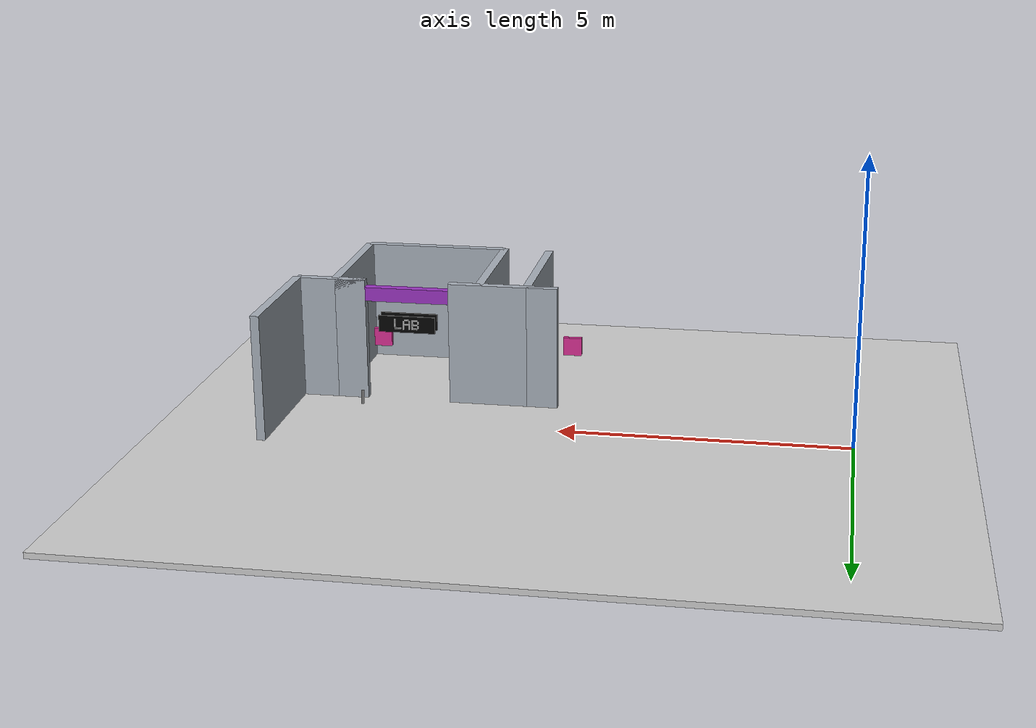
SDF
<sdf version="1.9">
 <world name="default">
  <model name="ground_plane">
   <static>true</static>
   <pose>4.95 0 -0.05 0 0 0</pose>
   <link name="body">
    <collision name="collision"><geometry><box><size>13.9 12 0.1</size></box></geometry></collision>
    <visual name="visual">
     <geometry><box><size>13.9 12 0.1</size></box></geometry>
     <material><ambient>0.8 0.8 0.8 1</ambient><diffuse>0.8 0.8 0.8 1</diffuse></material>
    </visual>
   </link>
  </model>
  <model name="end_wall">
   <static>true</static>
   <pose>9.9 0 1.1 0 0 0</pose>
   <link name="body">
    <collision name="collision"><geometry><box><size>0.15 2.4 2.2</size></box></geometry></collision>
    <visual name="visual">
     <geometry><box><size>0.15 2.4 2.2</size></box></geometry>
     <material><ambient>0.65 0.68 0.72 1</ambient><diffuse>0.65 0.68 0.72 1</diffuse></material>
    </visual>
   </link>
  </model>
  <model name="room_-1_1_1">
   <static>true</static>
   <pose>5.75 -2.4 1.1 0 0 0</pose>
   <link name="body">
    <collision name="collision"><geometry><box><size>0.15 2.4 2.2</size></box></geometry></collision>
    <visual name="visual">
     <geometry><box><size>0.15 2.4 2.2</size></box></geometry>
     <material><ambient>0.65 0.68 0.72 1</ambient><diffuse>0.65 0.68 0.72 1</diffuse></material>
    </visual>
   </link>
  </model>
  <model name="jamb_-1_1_1">
   <static>true</static>
   <pose>5.475 -1.2 1.1 0 0 0</pose>
   <link name="body">
    <collision name="collision"><geometry><box><size>0.55 0.15 2.2</size></box></geometry></collision>
    <visual name="visual">
     <geometry><box><size>0.55 0.15 2.2</size></box></geometry>
     <material><ambient>0.65 0.68 0.72 1</ambient><diffuse>0.65 0.68 0.72 1</diffuse></material>
    </visual>
   </link>
  </model>
  <model name="hall_-1_2">
   <static>true</static>
   <pose>6.175000000000001 -1.2 1.1 0 0 0</pose>
   <link name="body">
    <collision name="collision">
     <geometry><box><size>1.9500000000000002 0.15 2.2</size></box></geometry>
    </collision>
    <visual name="visual">
     <geometry><box><size>1.9500000000000002 0.15 2.2</size></box></geometry>
     <material><ambient>0.65 0.68 0.72 1</ambient><diffuse>0.65 0.68 0.72 1</diffuse></material>
    </visual>
   </link>
  </model>
  <model name="room_-1_2_-1">
   <static>true</static>
   <pose>6.6000000000000005 -2.4 1.1 0 0 0</pose>
   <link name="body">
    <collision name="collision"><geometry><box><size>0.15 2.4 2.2</size></box></geometry></collision>
    <visual name="visual">
     <geometry><box><size>0.15 2.4 2.2</size></box></geometry>
     <material><ambient>0.65 0.68 0.72 1</ambient><diffuse>0.65 0.68 0.72 1</diffuse></material>
    </visual>
   </link>
  </model>
  <model name="room_-1_2_1">
   <static>true</static>
   <pose>9.200000000000001 -2.4 1.1 0 0 0</pose>
   <link name="body">
    <collision name="collision"><geometry><box><size>0.15 2.4 2.2</size></box></geometry></collision>
    <visual name="visual">
     <geometry><box><size>0.15 2.4 2.2</size></box></geometry>
     <material><ambient>0.65 0.68 0.72 1</ambient><diffuse>0.65 0.68 0.72 1</diffuse></material>
    </visual>
   </link>
  </model>
  <model name="room_end_-1_2">
   <static>true</static>
   <pose>7.9 -3.5999999999999996 1.1 0 0 0</pose>
   <link name="body">
    <collision name="collision"><geometry><box><size>2.6 0.15 2.2</size></box></geometry></collision>
    <visual name="visual">
     <geometry><box><size>2.6 0.15 2.2</size></box></geometry>
     <material><ambient>0.65 0.68 0.72 1</ambient><diffuse>0.65 0.68 0.72 1</diffuse></material>
    </visual>
   </link>
  </model>
  <model name="jamb_-1_2_-1">
   <static>true</static>
   <pose>6.875 -1.2 1.1 0 0 0</pose>
   <link name="body">
    <collision name="collision"><geometry><box><size>0.55 0.15 2.2</size></box></geometry></collision>
    <visual name="visual">
     <geometry><box><size>0.55 0.15 2.2</size></box></geometry>
     <material><ambient>0.65 0.68 0.72 1</ambient><diffuse>0.65 0.68 0.72 1</diffuse></material>
    </visual>
   </link>
  </model>
  <model name="jamb_-1_2_1">
   <static>true</static>
   <pose>8.925 -1.2 1.1 0 0 0</pose>
   <link name="body">
    <collision name="collision"><geometry><box><size>0.55 0.15 2.2</size></box></geometry></collision>
    <visual name="visual">
     <geometry><box><size>0.55 0.15 2.2</size></box></geometry>
     <material><ambient>0.65 0.68 0.72 1</ambient><diffuse>0.65 0.68 0.72 1</diffuse></material>
    </visual>
   </link>
  </model>
  <model name="hall_end_-1">
   <static>true</static>
   <pose>9.275 -1.2 1.1 0 0 0</pose>
   <link name="body">
    <collision name="collision"><geometry><box><size>1.25 0.15 2.2</size></box></geometry></collision>
    <visual name="visual">
     <geometry><box><size>1.25 0.15 2.2</size></box></geometry>
     <material><ambient>0.65 0.68 0.72 1</ambient><diffuse>0.65 0.68 0.72 1</diffuse></material>
    </visual>
   </link>
  </model>
  <model name="r3geo_base_r007_right_1_entrance_sign">
   <static>true</static>
   <pose>4.98 -1.5 1.05 0 0 0</pose>
   <link name="body">
    <visual name="visual">
     <geometry><box><size>0.32 0.08 0.32</size></box></geometry>
     <material><ambient>0.84 0.18 0.57 1</ambient><diffuse>0.84 0.18 0.57 1</diffuse></material>
    </visual>
   </link>
  </model>
  <model name="r3geo_base_r007_right_2_lintel">
   <static>true</static>
   <pose>7.9 -1.2 1.95 0 0 0</pose>
   <link name="body">
    <collision name="collision"><geometry><box><size>1.5 0.16 0.25</size></box></geometry></collision>
    <visual name="visual">
     <geometry><box><size>1.5 0.16 0.25</size></box></geometry>
     <material><ambient>0.6 0.2 0.75 1</ambient><diffuse>0.6 0.2 0.75 1</diffuse></material>
    </visual>
   </link>
  </model>
  <model name="r3geo_base_r007_right_2_entrance_sign">
   <static>true</static>
   <pose>8.43 -1.5 1.05 0 0 0</pose>
   <link name="body">
    <visual name="visual">
     <geometry><box><size>0.32 0.08 0.32</size></box></geometry>
     <material><ambient>0.84 0.18 0.57 1</ambient><diffuse>0.84 0.18 0.57 1</diffuse></material>
    </visual>
   </link>
  </model>
  <model name="readable_r3geo_base_r007_right_2_entrance_corridor">
   <static>true</static>
   <pose>7.9 -1.1 1.43 0 0 3.14159265359</pose>
   <link name="lettering">
    <visual name="backboard">
     <geometry><box><size>1.02 0.018 0.3</size></box></geometry>
     <material>
      <ambient>.015 .015 .015 1</ambient>
      <diffuse>.015 .015 .015 1</diffuse>
      <emissive>.015 .015 .015 1</emissive>
     </material>
     <cast_shadows>false</cast_shadows>
    </visual>
    <visual name="letter_0_0_0">
     <pose>-0.208 -0.014 0.078 0 0 0</pose>
     <geometry><box><size>0.024439999999999996 0.008 0.024439999999999996</size></box></geometry>
     <material>
      <ambient>.96 .96 .96 1</ambient>
      <diffuse>.96 .96 .96 1</diffuse>
      <emissive>.96 .96 .96 1</emissive>
     </material>
     <cast_shadows>false</cast_shadows>
    </visual>
    <visual name="letter_0_1_0">
     <pose>-0.208 -0.014 0.052 0 0 0</pose>
     <geometry><box><size>0.024439999999999996 0.008 0.024439999999999996</size></box></geometry>
     <material>
      <ambient>.96 .96 .96 1</ambient>
      <diffuse>.96 .96 .96 1</diffuse>
      <emissive>.96 .96 .96 1</emissive>
     </material>
     <cast_shadows>false</cast_shadows>
    </visual>
    <visual name="letter_0_2_0">
     <pose>-0.208 -0.014 0.026 0 0 0</pose>
     <geometry><box><size>0.024439999999999996 0.008 0.024439999999999996</size></box></geometry>
     <material>
      <ambient>.96 .96 .96 1</ambient>
      <diffuse>.96 .96 .96 1</diffuse>
      <emissive>.96 .96 .96 1</emissive>
     </material>
     <cast_shadows>false</cast_shadows>
    </visual>
    <visual name="letter_0_3_0">
     <pose>-0.208 -0.014 0 0 0 0</pose>
     <geometry><box><size>0.024439999999999996 0.008 0.024439999999999996</size></box></geometry>
     <material>
      <ambient>.96 .96 .96 1</ambient>
      <diffuse>.96 .96 .96 1</diffuse>
      <emissive>.96 .96 .96 1</emissive>
     </material>
     <cast_shadows>false</cast_shadows>
    </visual>
    <visual name="letter_0_4_0">
     <pose>-0.208 -0.014 -0.026 0 0 0</pose>
     <geometry><box><size>0.024439999999999996 0.008 0.024439999999999996</size></box></geometry>
     <material>
      <ambient>.96 .96 .96 1</ambient>
      <diffuse>.96 .96 .96 1</diffuse>
      <emissive>.96 .96 .96 1</emissive>
     </material>
     <cast_shadows>false</cast_shadows>
    </visual>
    <visual name="letter_0_5_0">
     <pose>-0.208 -0.014 -0.052 0 0 0</pose>
     <geometry><box><size>0.024439999999999996 0.008 0.024439999999999996</size></box></geometry>
     <material>
      <ambient>.96 .96 .96 1</ambient>
      <diffuse>.96 .96 .96 1</diffuse>
      <emissive>.96 .96 .96 1</emissive>
     </material>
     <cast_shadows>false</cast_shadows>
    </visual>
    <visual name="letter_0_6_0">
     <pose>-0.208 -0.014 -0.078 0 0 0</pose>
     <geometry><box><size>0.024439999999999996 0.008 0.024439999999999996</size></box></geometry>
     <material>
      <ambient>.96 .96 .96 1</ambient>
      <diffuse>.96 .96 .96 1</diffuse>
      <emissive>.96 .96 .96 1</emissive>
     </material>
     <cast_shadows>false</cast_shadows>
    </visual>
    <visual name="letter_0_6_1">
     <pose>-0.182 -0.014 -0.078 0 0 0</pose>
     <geometry><box><size>0.024439999999999996 0.008 0.024439999999999996</size></box></geometry>
     <material>
      <ambient>.96 .96 .96 1</ambient>
      <diffuse>.96 .96 .96 1</diffuse>
      <emissive>.96 .96 .96 1</emissive>
     </material>
     <cast_shadows>false</cast_shadows>
    </visual>
    <visual name="letter_0_6_2">
     <pose>-0.156 -0.014 -0.078 0 0 0</pose>
     <geometry><box><size>0.024439999999999996 0.008 0.024439999999999996</size></box></geometry>
     <material>
      <ambient>.96 .96 .96 1</ambient>
      <diffuse>.96 .96 .96 1</diffuse>
      <emissive>.96 .96 .96 1</emissive>
     </material>
     <cast_shadows>false</cast_shadows>
    </visual>
    <visual name="letter_0_6_3">
     <pose>-0.13 -0.014 -0.078 0 0 0</pose>
     <geometry><box><size>0.024439999999999996 0.008 0.024439999999999996</size></box></geometry>
     <material>
      <ambient>.96 .96 .96 1</ambient>
      <diffuse>.96 .96 .96 1</diffuse>
      <emissive>.96 .96 .96 1</emissive>
     </material>
     <cast_shadows>false</cast_shadows>
    </visual>
    <visual name="letter_0_6_4">
     <pose>-0.104 -0.014 -0.078 0 0 0</pose>
     <geometry><box><size>0.024439999999999996 0.008 0.024439999999999996</size></box></geometry>
     <material>
      <ambient>.96 .96 .96 1</ambient>
      <diffuse>.96 .96 .96 1</diffuse>
      <emissive>.96 .96 .96 1</emissive>
     </material>
     <cast_shadows>false</cast_shadows>
    </visual>
    <visual name="letter_1_0_1">
     <pose>-0.026 -0.014 0.078 0 0 0</pose>
     <geometry><box><size>0.024439999999999996 0.008 0.024439999999999996</size></box></geometry>
     <material>
      <ambient>.96 .96 .96 1</ambient>
      <diffuse>.96 .96 .96 1</diffuse>
      <emissive>.96 .96 .96 1</emissive>
     </material>
     <cast_shadows>false</cast_shadows>
    </visual>
    <visual name="letter_1_0_2">
     <pose>0 -0.014 0.078 0 0 0</pose>
     <geometry><box><size>0.024439999999999996 0.008 0.024439999999999996</size></box></geometry>
     <material>
      <ambient>.96 .96 .96 1</ambient>
      <diffuse>.96 .96 .96 1</diffuse>
      <emissive>.96 .96 .96 1</emissive>
     </material>
     <cast_shadows>false</cast_shadows>
    </visual>
    <visual name="letter_1_0_3">
     <pose>0.026 -0.014 0.078 0 0 0</pose>
     <geometry><box><size>0.024439999999999996 0.008 0.024439999999999996</size></box></geometry>
     <material>
      <ambient>.96 .96 .96 1</ambient>
      <diffuse>.96 .96 .96 1</diffuse>
      <emissive>.96 .96 .96 1</emissive>
     </material>
     <cast_shadows>false</cast_shadows>
    </visual>
    <visual name="letter_1_1_0">
     <pose>-0.052 -0.014 0.052 0 0 0</pose>
     <geometry><box><size>0.024439999999999996 0.008 0.024439999999999996</size></box></geometry>
     <material>
      <ambient>.96 .96 .96 1</ambient>
      <diffuse>.96 .96 .96 1</diffuse>
      <emissive>.96 .96 .96 1</emissive>
     </material>
     <cast_shadows>false</cast_shadows>
    </visual>
    <visual name="letter_1_1_4">
     <pose>0.052 -0.014 0.052 0 0 0</pose>
     <geometry><box><size>0.024439999999999996 0.008 0.024439999999999996</size></box></geometry>
     <material>
      <ambient>.96 .96 .96 1</ambient>
      <diffuse>.96 .96 .96 1</diffuse>
      <emissive>.96 .96 .96 1</emissive>
     </material>
     <cast_shadows>false</cast_shadows>
    </visual>
    <visual name="letter_1_2_0">
     <pose>-0.052 -0.014 0.026 0 0 0</pose>
     <geometry><box><size>0.024439999999999996 0.008 0.024439999999999996</size></box></geometry>
     <material>
      <ambient>.96 .96 .96 1</ambient>
      <diffuse>.96 .96 .96 1</diffuse>
      <emissive>.96 .96 .96 1</emissive>
     </material>
     <cast_shadows>false</cast_shadows>
    </visual>
    <visual name="letter_1_2_4">
     <pose>0.052 -0.014 0.026 0 0 0</pose>
     <geometry><box><size>0.024439999999999996 0.008 0.024439999999999996</size></box></geometry>
     <material>
      <ambient>.96 .96 .96 1</ambient>
      <diffuse>.96 .96 .96 1</diffuse>
      <emissive>.96 .96 .96 1</emissive>
     </material>
     <cast_shadows>false</cast_shadows>
    </visual>
    <visual name="letter_1_3_0">
     <pose>-0.052 -0.014 0 0 0 0</pose>
     <geometry><box><size>0.024439999999999996 0.008 0.024439999999999996</size></box></geometry>
     <material>
      <ambient>.96 .96 .96 1</ambient>
      <diffuse>.96 .96 .96 1</diffuse>
      <emissive>.96 .96 .96 1</emissive>
     </material>
     <cast_shadows>false</cast_shadows>
    </visual>
    <visual name="letter_1_3_1">
     <pose>-0.026 -0.014 0 0 0 0</pose>
     <geometry><box><size>0.024439999999999996 0.008 0.024439999999999996</size></box></geometry>
     <material>
      <ambient>.96 .96 .96 1</ambient>
      <diffuse>.96 .96 .96 1</diffuse>
      <emissive>.96 .96 .96 1</emissive>
     </material>
     <cast_shadows>false</cast_shadows>
    </visual>
    <visual name="letter_1_3_2">
     <pose>0 -0.014 0 0 0 0</pose>
     <geometry><box><size>0.024439999999999996 0.008 0.024439999999999996</size></box></geometry>
     <material>
      <ambient>.96 .96 .96 1</ambient>
      <diffuse>.96 .96 .96 1</diffuse>
      <emissive>.96 .96 .96 1</emissive>
     </material>
     <cast_shadows>false</cast_shadows>
    </visual>
    <visual name="letter_1_3_3">
     <pose>0.026 -0.014 0 0 0 0</pose>
     <geometry><box><size>0.024439999999999996 0.008 0.024439999999999996</size></box></geometry>
     <material>
      <ambient>.96 .96 .96 1</ambient>
      <diffuse>.96 .96 .96 1</diffuse>
      <emissive>.96 .96 .96 1</emissive>
     </material>
     <cast_shadows>false</cast_shadows>
    </visual>
    <visual name="letter_1_3_4">
     <pose>0.052 -0.014 0 0 0 0</pose>
     <geometry><box><size>0.024439999999999996 0.008 0.024439999999999996</size></box></geometry>
     <material>
      <ambient>.96 .96 .96 1</ambient>
      <diffuse>.96 .96 .96 1</diffuse>
      <emissive>.96 .96 .96 1</emissive>
     </material>
     <cast_shadows>false</cast_shadows>
    </visual>
    <visual name="letter_1_4_0">
     <pose>-0.052 -0.014 -0.026 0 0 0</pose>
     <geometry><box><size>0.024439999999999996 0.008 0.024439999999999996</size></box></geometry>
     <material>
      <ambient>.96 .96 .96 1</ambient>
      <diffuse>.96 .96 .96 1</diffuse>
      <emissive>.96 .96 .96 1</emissive>
     </material>
     <cast_shadows>false</cast_shadows>
    </visual>
    <visual name="letter_1_4_4">
     <pose>0.052 -0.014 -0.026 0 0 0</pose>
     <geometry><box><size>0.024439999999999996 0.008 0.024439999999999996</size></box></geometry>
     <material>
      <ambient>.96 .96 .96 1</ambient>
      <diffuse>.96 .96 .96 1</diffuse>
      <emissive>.96 .96 .96 1</emissive>
     </material>
     <cast_shadows>false</cast_shadows>
    </visual>
    <visual name="letter_1_5_0">
     <pose>-0.052 -0.014 -0.052 0 0 0</pose>
     <geometry><box><size>0.024439999999999996 0.008 0.024439999999999996</size></box></geometry>
     <material>
      <ambient>.96 .96 .96 1</ambient>
      <diffuse>.96 .96 .96 1</diffuse>
      <emissive>.96 .96 .96 1</emissive>
     </material>
     <cast_shadows>false</cast_shadows>
    </visual>
    <visual name="letter_1_5_4">
     <pose>0.052 -0.014 -0.052 0 0 0</pose>
     <geometry><box><size>0.024439999999999996 0.008 0.024439999999999996</size></box></geometry>
     <material>
      <ambient>.96 .96 .96 1</ambient>
      <diffuse>.96 .96 .96 1</diffuse>
      <emissive>.96 .96 .96 1</emissive>
     </material>
     <cast_shadows>false</cast_shadows>
    </visual>
    <visual name="letter_1_6_0">
     <pose>-0.052 -0.014 -0.078 0 0 0</pose>
     <geometry><box><size>0.024439999999999996 0.008 0.024439999999999996</size></box></geometry>
     <material>
      <ambient>.96 .96 .96 1</ambient>
      <diffuse>.96 .96 .96 1</diffuse>
      <emissive>.96 .96 .96 1</emissive>
     </material>
     <cast_shadows>false</cast_shadows>
    </visual>
    <visual name="letter_1_6_4">
     <pose>0.052 -0.014 -0.078 0 0 0</pose>
     <geometry><box><size>0.024439999999999996 0.008 0.024439999999999996</size></box></geometry>
     <material>
      <ambient>.96 .96 .96 1</ambient>
      <diffuse>.96 .96 .96 1</diffuse>
      <emissive>.96 .96 .96 1</emissive>
     </material>
     <cast_shadows>false</cast_shadows>
    </visual>
    <visual name="letter_2_0_0">
     <pose>0.104 -0.014 0.078 0 0 0</pose>
     <geometry><box><size>0.024439999999999996 0.008 0.024439999999999996</size></box></geometry>
     <material>
      <ambient>.96 .96 .96 1</ambient>
      <diffuse>.96 .96 .96 1</diffuse>
      <emissive>.96 .96 .96 1</emissive>
     </material>
     <cast_shadows>false</cast_shadows>
    </visual>
    <visual name="letter_2_0_1">
     <pose>0.13 -0.014 0.078 0 0 0</pose>
     <geometry><box><size>0.024439999999999996 0.008 0.024439999999999996</size></box></geometry>
     <material>
      <ambient>.96 .96 .96 1</ambient>
      <diffuse>.96 .96 .96 1</diffuse>
      <emissive>.96 .96 .96 1</emissive>
     </material>
     <cast_shadows>false</cast_shadows>
    </visual>
    <visual name="letter_2_0_2">
     <pose>0.156 -0.014 0.078 0 0 0</pose>
     <geometry><box><size>0.024439999999999996 0.008 0.024439999999999996</size></box></geometry>
     <material>
      <ambient>.96 .96 .96 1</ambient>
      <diffuse>.96 .96 .96 1</diffuse>
      <emissive>.96 .96 .96 1</emissive>
     </material>
     <cast_shadows>false</cast_shadows>
    </visual>
    <visual name="letter_2_0_3">
     <pose>0.182 -0.014 0.078 0 0 0</pose>
     <geometry><box><size>0.024439999999999996 0.008 0.024439999999999996</size></box></geometry>
     <material>
      <ambient>.96 .96 .96 1</ambient>
      <diffuse>.96 .96 .96 1</diffuse>
      <emissive>.96 .96 .96 1</emissive>
     </material>
     <cast_shadows>false</cast_shadows>
    </visual>
    <visual name="letter_2_1_0">
     <pose>0.104 -0.014 0.052 0 0 0</pose>
     <geometry><box><size>0.024439999999999996 0.008 0.024439999999999996</size></box></geometry>
     <material>
      <ambient>.96 .96 .96 1</ambient>
      <diffuse>.96 .96 .96 1</diffuse>
      <emissive>.96 .96 .96 1</emissive>
     </material>
     <cast_shadows>false</cast_shadows>
    </visual>
    <visual name="letter_2_1_4">
     <pose>0.208 -0.014 0.052 0 0 0</pose>
     <geometry><box><size>0.024439999999999996 0.008 0.024439999999999996</size></box></geometry>
     <material>
      <ambient>.96 .96 .96 1</ambient>
      <diffuse>.96 .96 .96 1</diffuse>
      <emissive>.96 .96 .96 1</emissive>
     </material>
     <cast_shadows>false</cast_shadows>
    </visual>
    <visual name="letter_2_2_0">
     <pose>0.104 -0.014 0.026 0 0 0</pose>
     <geometry><box><size>0.024439999999999996 0.008 0.024439999999999996</size></box></geometry>
     <material>
      <ambient>.96 .96 .96 1</ambient>
      <diffuse>.96 .96 .96 1</diffuse>
      <emissive>.96 .96 .96 1</emissive>
     </material>
     <cast_shadows>false</cast_shadows>
    </visual>
    <visual name="letter_2_2_4">
     <pose>0.208 -0.014 0.026 0 0 0</pose>
     <geometry><box><size>0.024439999999999996 0.008 0.024439999999999996</size></box></geometry>
     <material>
      <ambient>.96 .96 .96 1</ambient>
      <diffuse>.96 .96 .96 1</diffuse>
      <emissive>.96 .96 .96 1</emissive>
     </material>
     <cast_shadows>false</cast_shadows>
    </visual>
    <visual name="letter_2_3_0">
     <pose>0.104 -0.014 0 0 0 0</pose>
     <geometry><box><size>0.024439999999999996 0.008 0.024439999999999996</size></box></geometry>
     <material>
      <ambient>.96 .96 .96 1</ambient>
      <diffuse>.96 .96 .96 1</diffuse>
      <emissive>.96 .96 .96 1</emissive>
     </material>
     <cast_shadows>false</cast_shadows>
    </visual>
    <visual name="letter_2_3_1">
     <pose>0.13 -0.014 0 0 0 0</pose>
     <geometry><box><size>0.024439999999999996 0.008 0.024439999999999996</size></box></geometry>
     <material>
      <ambient>.96 .96 .96 1</ambient>
      <diffuse>.96 .96 .96 1</diffuse>
      <emissive>.96 .96 .96 1</emissive>
     </material>
     <cast_shadows>false</cast_shadows>
    </visual>
    <visual name="letter_2_3_2">
     <pose>0.156 -0.014 0 0 0 0</pose>
     <geometry><box><size>0.024439999999999996 0.008 0.024439999999999996</size></box></geometry>
     <material>
      <ambient>.96 .96 .96 1</ambient>
      <diffuse>.96 .96 .96 1</diffuse>
      <emissive>.96 .96 .96 1</emissive>
     </material>
     <cast_shadows>false</cast_shadows>
    </visual>
    <visual name="letter_2_3_3">
     <pose>0.182 -0.014 0 0 0 0</pose>
     <geometry><box><size>0.024439999999999996 0.008 0.024439999999999996</size></box></geometry>
     <material>
      <ambient>.96 .96 .96 1</ambient>
      <diffuse>.96 .96 .96 1</diffuse>
      <emissive>.96 .96 .96 1</emissive>
     </material>
     <cast_shadows>false</cast_shadows>
    </visual>
    <visual name="letter_2_4_0">
     <pose>0.104 -0.014 -0.026 0 0 0</pose>
     <geometry><box><size>0.024439999999999996 0.008 0.024439999999999996</size></box></geometry>
     <material>
      <ambient>.96 .96 .96 1</ambient>
      <diffuse>.96 .96 .96 1</diffuse>
      <emissive>.96 .96 .96 1</emissive>
     </material>
     <cast_shadows>false</cast_shadows>
    </visual>
    <visual name="letter_2_4_4">
     <pose>0.208 -0.014 -0.026 0 0 0</pose>
     <geometry><box><size>0.024439999999999996 0.008 0.024439999999999996</size></box></geometry>
     <material>
      <ambient>.96 .96 .96 1</ambient>
      <diffuse>.96 .96 .96 1</diffuse>
      <emissive>.96 .96 .96 1</emissive>
     </material>
     <cast_shadows>false</cast_shadows>
    </visual>
    <visual name="letter_2_5_0">
     <pose>0.104 -0.014 -0.052 0 0 0</pose>
     <geometry><box><size>0.024439999999999996 0.008 0.024439999999999996</size></box></geometry>
     <material>
      <ambient>.96 .96 .96 1</ambient>
      <diffuse>.96 .96 .96 1</diffuse>
      <emissive>.96 .96 .96 1</emissive>
     </material>
     <cast_shadows>false</cast_shadows>
    </visual>
    <visual name="letter_2_5_4">
     <pose>0.208 -0.014 -0.052 0 0 0</pose>
     <geometry><box><size>0.024439999999999996 0.008 0.024439999999999996</size></box></geometry>
     <material>
      <ambient>.96 .96 .96 1</ambient>
      <diffuse>.96 .96 .96 1</diffuse>
      <emissive>.96 .96 .96 1</emissive>
     </material>
     <cast_shadows>false</cast_shadows>
    </visual>
    <visual name="letter_2_6_0">
     <pose>0.104 -0.014 -0.078 0 0 0</pose>
     <geometry><box><size>0.024439999999999996 0.008 0.024439999999999996</size></box></geometry>
     <material>
      <ambient>.96 .96 .96 1</ambient>
      <diffuse>.96 .96 .96 1</diffuse>
      <emissive>.96 .96 .96 1</emissive>
     </material>
     <cast_shadows>false</cast_shadows>
    </visual>
    <visual name="letter_2_6_1">
     <pose>0.13 -0.014 -0.078 0 0 0</pose>
     <geometry><box><size>0.024439999999999996 0.008 0.024439999999999996</size></box></geometry>
     <material>
      <ambient>.96 .96 .96 1</ambient>
      <diffuse>.96 .96 .96 1</diffuse>
      <emissive>.96 .96 .96 1</emissive>
     </material>
     <cast_shadows>false</cast_shadows>
    </visual>
    <visual name="letter_2_6_2">
     <pose>0.156 -0.014 -0.078 0 0 0</pose>
     <geometry><box><size>0.024439999999999996 0.008 0.024439999999999996</size></box></geometry>
     <material>
      <ambient>.96 .96 .96 1</ambient>
      <diffuse>.96 .96 .96 1</diffuse>
      <emissive>.96 .96 .96 1</emissive>
     </material>
     <cast_shadows>false</cast_shadows>
    </visual>
    <visual name="letter_2_6_3">
     <pose>0.182 -0.014 -0.078 0 0 0</pose>
     <geometry><box><size>0.024439999999999996 0.008 0.024439999999999996</size></box></geometry>
     <material>
      <ambient>.96 .96 .96 1</ambient>
      <diffuse>.96 .96 .96 1</diffuse>
      <emissive>.96 .96 .96 1</emissive>
     </material>
     <cast_shadows>false</cast_shadows>
    </visual>
   </link>
  </model>
  <model name="readable_r3geo_base_r007_right_2_entrance_room">
   <static>true</static>
   <pose>7.9 -1.3 1.43 0 0 0</pose>
   <link name="lettering">
    <visual name="backboard">
     <geometry><box><size>1.02 0.018 0.3</size></box></geometry>
     <material>
      <ambient>.015 .015 .015 1</ambient>
      <diffuse>.015 .015 .015 1</diffuse>
      <emissive>.015 .015 .015 1</emissive>
     </material>
     <cast_shadows>false</cast_shadows>
    </visual>
    <visual name="letter_0_0_0">
     <pose>-0.208 -0.014 0.078 0 0 0</pose>
     <geometry><box><size>0.024439999999999996 0.008 0.024439999999999996</size></box></geometry>
     <material>
      <ambient>.96 .96 .96 1</ambient>
      <diffuse>.96 .96 .96 1</diffuse>
      <emissive>.96 .96 .96 1</emissive>
     </material>
     <cast_shadows>false</cast_shadows>
    </visual>
    <visual name="letter_0_1_0">
     <pose>-0.208 -0.014 0.052 0 0 0</pose>
     <geometry><box><size>0.024439999999999996 0.008 0.024439999999999996</size></box></geometry>
     <material>
      <ambient>.96 .96 .96 1</ambient>
      <diffuse>.96 .96 .96 1</diffuse>
      <emissive>.96 .96 .96 1</emissive>
     </material>
     <cast_shadows>false</cast_shadows>
    </visual>
    <visual name="letter_0_2_0">
     <pose>-0.208 -0.014 0.026 0 0 0</pose>
     <geometry><box><size>0.024439999999999996 0.008 0.024439999999999996</size></box></geometry>
     <material>
      <ambient>.96 .96 .96 1</ambient>
      <diffuse>.96 .96 .96 1</diffuse>
      <emissive>.96 .96 .96 1</emissive>
     </material>
     <cast_shadows>false</cast_shadows>
    </visual>
    <visual name="letter_0_3_0">
     <pose>-0.208 -0.014 0 0 0 0</pose>
     <geometry><box><size>0.024439999999999996 0.008 0.024439999999999996</size></box></geometry>
     <material>
      <ambient>.96 .96 .96 1</ambient>
      <diffuse>.96 .96 .96 1</diffuse>
      <emissive>.96 .96 .96 1</emissive>
     </material>
     <cast_shadows>false</cast_shadows>
    </visual>
    <visual name="letter_0_4_0">
     <pose>-0.208 -0.014 -0.026 0 0 0</pose>
     <geometry><box><size>0.024439999999999996 0.008 0.024439999999999996</size></box></geometry>
     <material>
      <ambient>.96 .96 .96 1</ambient>
      <diffuse>.96 .96 .96 1</diffuse>
      <emissive>.96 .96 .96 1</emissive>
     </material>
     <cast_shadows>false</cast_shadows>
    </visual>
    <visual name="letter_0_5_0">
     <pose>-0.208 -0.014 -0.052 0 0 0</pose>
     <geometry><box><size>0.024439999999999996 0.008 0.024439999999999996</size></box></geometry>
     <material>
      <ambient>.96 .96 .96 1</ambient>
      <diffuse>.96 .96 .96 1</diffuse>
      <emissive>.96 .96 .96 1</emissive>
     </material>
     <cast_shadows>false</cast_shadows>
    </visual>
    <visual name="letter_0_6_0">
     <pose>-0.208 -0.014 -0.078 0 0 0</pose>
     <geometry><box><size>0.024439999999999996 0.008 0.024439999999999996</size></box></geometry>
     <material>
      <ambient>.96 .96 .96 1</ambient>
      <diffuse>.96 .96 .96 1</diffuse>
      <emissive>.96 .96 .96 1</emissive>
     </material>
     <cast_shadows>false</cast_shadows>
    </visual>
    <visual name="letter_0_6_1">
     <pose>-0.182 -0.014 -0.078 0 0 0</pose>
     <geometry><box><size>0.024439999999999996 0.008 0.024439999999999996</size></box></geometry>
     <material>
      <ambient>.96 .96 .96 1</ambient>
      <diffuse>.96 .96 .96 1</diffuse>
      <emissive>.96 .96 .96 1</emissive>
     </material>
     <cast_shadows>false</cast_shadows>
    </visual>
    <visual name="letter_0_6_2">
     <pose>-0.156 -0.014 -0.078 0 0 0</pose>
     <geometry><box><size>0.024439999999999996 0.008 0.024439999999999996</size></box></geometry>
     <material>
      <ambient>.96 .96 .96 1</ambient>
      <diffuse>.96 .96 .96 1</diffuse>
      <emissive>.96 .96 .96 1</emissive>
     </material>
     <cast_shadows>false</cast_shadows>
    </visual>
    <visual name="letter_0_6_3">
     <pose>-0.13 -0.014 -0.078 0 0 0</pose>
     <geometry><box><size>0.024439999999999996 0.008 0.024439999999999996</size></box></geometry>
     <material>
      <ambient>.96 .96 .96 1</ambient>
      <diffuse>.96 .96 .96 1</diffuse>
      <emissive>.96 .96 .96 1</emissive>
     </material>
     <cast_shadows>false</cast_shadows>
    </visual>
    <visual name="letter_0_6_4">
     <pose>-0.104 -0.014 -0.078 0 0 0</pose>
     <geometry><box><size>0.024439999999999996 0.008 0.024439999999999996</size></box></geometry>
     <material>
      <ambient>.96 .96 .96 1</ambient>
      <diffuse>.96 .96 .96 1</diffuse>
      <emissive>.96 .96 .96 1</emissive>
     </material>
     <cast_shadows>false</cast_shadows>
    </visual>
    <visual name="letter_1_0_1">
     <pose>-0.026 -0.014 0.078 0 0 0</pose>
     <geometry><box><size>0.024439999999999996 0.008 0.024439999999999996</size></box></geometry>
     <material>
      <ambient>.96 .96 .96 1</ambient>
      <diffuse>.96 .96 .96 1</diffuse>
      <emissive>.96 .96 .96 1</emissive>
     </material>
     <cast_shadows>false</cast_shadows>
    </visual>
    <visual name="letter_1_0_2">
     <pose>0 -0.014 0.078 0 0 0</pose>
     <geometry><box><size>0.024439999999999996 0.008 0.024439999999999996</size></box></geometry>
     <material>
      <ambient>.96 .96 .96 1</ambient>
      <diffuse>.96 .96 .96 1</diffuse>
      <emissive>.96 .96 .96 1</emissive>
     </material>
     <cast_shadows>false</cast_shadows>
    </visual>
    <visual name="letter_1_0_3">
     <pose>0.026 -0.014 0.078 0 0 0</pose>
     <geometry><box><size>0.024439999999999996 0.008 0.024439999999999996</size></box></geometry>
     <material>
      <ambient>.96 .96 .96 1</ambient>
      <diffuse>.96 .96 .96 1</diffuse>
      <emissive>.96 .96 .96 1</emissive>
     </material>
     <cast_shadows>false</cast_shadows>
    </visual>
    <visual name="letter_1_1_0">
     <pose>-0.052 -0.014 0.052 0 0 0</pose>
     <geometry><box><size>0.024439999999999996 0.008 0.024439999999999996</size></box></geometry>
     <material>
      <ambient>.96 .96 .96 1</ambient>
      <diffuse>.96 .96 .96 1</diffuse>
      <emissive>.96 .96 .96 1</emissive>
     </material>
     <cast_shadows>false</cast_shadows>
    </visual>
    <visual name="letter_1_1_4">
     <pose>0.052 -0.014 0.052 0 0 0</pose>
     <geometry><box><size>0.024439999999999996 0.008 0.024439999999999996</size></box></geometry>
     <material>
      <ambient>.96 .96 .96 1</ambient>
      <diffuse>.96 .96 .96 1</diffuse>
      <emissive>.96 .96 .96 1</emissive>
     </material>
     <cast_shadows>false</cast_shadows>
    </visual>
    <visual name="letter_1_2_0">
     <pose>-0.052 -0.014 0.026 0 0 0</pose>
     <geometry><box><size>0.024439999999999996 0.008 0.024439999999999996</size></box></geometry>
     <material>
      <ambient>.96 .96 .96 1</ambient>
      <diffuse>.96 .96 .96 1</diffuse>
      <emissive>.96 .96 .96 1</emissive>
     </material>
     <cast_shadows>false</cast_shadows>
    </visual>
    <visual name="letter_1_2_4">
     <pose>0.052 -0.014 0.026 0 0 0</pose>
     <geometry><box><size>0.024439999999999996 0.008 0.024439999999999996</size></box></geometry>
     <material>
      <ambient>.96 .96 .96 1</ambient>
      <diffuse>.96 .96 .96 1</diffuse>
      <emissive>.96 .96 .96 1</emissive>
     </material>
     <cast_shadows>false</cast_shadows>
    </visual>
    <visual name="letter_1_3_0">
     <pose>-0.052 -0.014 0 0 0 0</pose>
     <geometry><box><size>0.024439999999999996 0.008 0.024439999999999996</size></box></geometry>
     <material>
      <ambient>.96 .96 .96 1</ambient>
      <diffuse>.96 .96 .96 1</diffuse>
      <emissive>.96 .96 .96 1</emissive>
     </material>
     <cast_shadows>false</cast_shadows>
    </visual>
    <visual name="letter_1_3_1">
     <pose>-0.026 -0.014 0 0 0 0</pose>
     <geometry><box><size>0.024439999999999996 0.008 0.024439999999999996</size></box></geometry>
     <material>
      <ambient>.96 .96 .96 1</ambient>
      <diffuse>.96 .96 .96 1</diffuse>
      <emissive>.96 .96 .96 1</emissive>
     </material>
     <cast_shadows>false</cast_shadows>
    </visual>
    <visual name="letter_1_3_2">
     <pose>0 -0.014 0 0 0 0</pose>
     <geometry><box><size>0.024439999999999996 0.008 0.024439999999999996</size></box></geometry>
     <material>
      <ambient>.96 .96 .96 1</ambient>
      <diffuse>.96 .96 .96 1</diffuse>
      <emissive>.96 .96 .96 1</emissive>
     </material>
     <cast_shadows>false</cast_shadows>
    </visual>
    <visual name="letter_1_3_3">
     <pose>0.026 -0.014 0 0 0 0</pose>
     <geometry><box><size>0.024439999999999996 0.008 0.024439999999999996</size></box></geometry>
     <material>
      <ambient>.96 .96 .96 1</ambient>
      <diffuse>.96 .96 .96 1</diffuse>
      <emissive>.96 .96 .96 1</emissive>
     </material>
     <cast_shadows>false</cast_shadows>
    </visual>
    <visual name="letter_1_3_4">
     <pose>0.052 -0.014 0 0 0 0</pose>
     <geometry><box><size>0.024439999999999996 0.008 0.024439999999999996</size></box></geometry>
     <material>
      <ambient>.96 .96 .96 1</ambient>
      <diffuse>.96 .96 .96 1</diffuse>
      <emissive>.96 .96 .96 1</emissive>
     </material>
     <cast_shadows>false</cast_shadows>
    </visual>
    <visual name="letter_1_4_0">
     <pose>-0.052 -0.014 -0.026 0 0 0</pose>
     <geometry><box><size>0.024439999999999996 0.008 0.024439999999999996</size></box></geometry>
     <material>
      <ambient>.96 .96 .96 1</ambient>
      <diffuse>.96 .96 .96 1</diffuse>
      <emissive>.96 .96 .96 1</emissive>
     </material>
     <cast_shadows>false</cast_shadows>
    </visual>
    <visual name="letter_1_4_4">
     <pose>0.052 -0.014 -0.026 0 0 0</pose>
     <geometry><box><size>0.024439999999999996 0.008 0.024439999999999996</size></box></geometry>
     <material>
      <ambient>.96 .96 .96 1</ambient>
      <diffuse>.96 .96 .96 1</diffuse>
      <emissive>.96 .96 .96 1</emissive>
     </material>
     <cast_shadows>false</cast_shadows>
    </visual>
    <visual name="letter_1_5_0">
     <pose>-0.052 -0.014 -0.052 0 0 0</pose>
     <geometry><box><size>0.024439999999999996 0.008 0.024439999999999996</size></box></geometry>
     <material>
      <ambient>.96 .96 .96 1</ambient>
      <diffuse>.96 .96 .96 1</diffuse>
      <emissive>.96 .96 .96 1</emissive>
     </material>
     <cast_shadows>false</cast_shadows>
    </visual>
    <visual name="letter_1_5_4">
     <pose>0.052 -0.014 -0.052 0 0 0</pose>
     <geometry><box><size>0.024439999999999996 0.008 0.024439999999999996</size></box></geometry>
     <material>
      <ambient>.96 .96 .96 1</ambient>
      <diffuse>.96 .96 .96 1</diffuse>
      <emissive>.96 .96 .96 1</emissive>
     </material>
     <cast_shadows>false</cast_shadows>
    </visual>
    <visual name="letter_1_6_0">
     <pose>-0.052 -0.014 -0.078 0 0 0</pose>
     <geometry><box><size>0.024439999999999996 0.008 0.024439999999999996</size></box></geometry>
     <material>
      <ambient>.96 .96 .96 1</ambient>
      <diffuse>.96 .96 .96 1</diffuse>
      <emissive>.96 .96 .96 1</emissive>
     </material>
     <cast_shadows>false</cast_shadows>
    </visual>
    <visual name="letter_1_6_4">
     <pose>0.052 -0.014 -0.078 0 0 0</pose>
     <geometry><box><size>0.024439999999999996 0.008 0.024439999999999996</size></box></geometry>
     <material>
      <ambient>.96 .96 .96 1</ambient>
      <diffuse>.96 .96 .96 1</diffuse>
      <emissive>.96 .96 .96 1</emissive>
     </material>
     <cast_shadows>false</cast_shadows>
    </visual>
    <visual name="letter_2_0_0">
     <pose>0.104 -0.014 0.078 0 0 0</pose>
     <geometry><box><size>0.024439999999999996 0.008 0.024439999999999996</size></box></geometry>
     <material>
      <ambient>.96 .96 .96 1</ambient>
      <diffuse>.96 .96 .96 1</diffuse>
      <emissive>.96 .96 .96 1</emissive>
     </material>
     <cast_shadows>false</cast_shadows>
    </visual>
    <visual name="letter_2_0_1">
     <pose>0.13 -0.014 0.078 0 0 0</pose>
     <geometry><box><size>0.024439999999999996 0.008 0.024439999999999996</size></box></geometry>
     <material>
      <ambient>.96 .96 .96 1</ambient>
      <diffuse>.96 .96 .96 1</diffuse>
      <emissive>.96 .96 .96 1</emissive>
     </material>
     <cast_shadows>false</cast_shadows>
    </visual>
    <visual name="letter_2_0_2">
     <pose>0.156 -0.014 0.078 0 0 0</pose>
     <geometry><box><size>0.024439999999999996 0.008 0.024439999999999996</size></box></geometry>
     <material>
      <ambient>.96 .96 .96 1</ambient>
      <diffuse>.96 .96 .96 1</diffuse>
      <emissive>.96 .96 .96 1</emissive>
     </material>
     <cast_shadows>false</cast_shadows>
    </visual>
    <visual name="letter_2_0_3">
     <pose>0.182 -0.014 0.078 0 0 0</pose>
     <geometry><box><size>0.024439999999999996 0.008 0.024439999999999996</size></box></geometry>
     <material>
      <ambient>.96 .96 .96 1</ambient>
      <diffuse>.96 .96 .96 1</diffuse>
      <emissive>.96 .96 .96 1</emissive>
     </material>
     <cast_shadows>false</cast_shadows>
    </visual>
    <visual name="letter_2_1_0">
     <pose>0.104 -0.014 0.052 0 0 0</pose>
     <geometry><box><size>0.024439999999999996 0.008 0.024439999999999996</size></box></geometry>
     <material>
      <ambient>.96 .96 .96 1</ambient>
      <diffuse>.96 .96 .96 1</diffuse>
      <emissive>.96 .96 .96 1</emissive>
     </material>
     <cast_shadows>false</cast_shadows>
    </visual>
    <visual name="letter_2_1_4">
     <pose>0.208 -0.014 0.052 0 0 0</pose>
     <geometry><box><size>0.024439999999999996 0.008 0.024439999999999996</size></box></geometry>
     <material>
      <ambient>.96 .96 .96 1</ambient>
      <diffuse>.96 .96 .96 1</diffuse>
      <emissive>.96 .96 .96 1</emissive>
     </material>
     <cast_shadows>false</cast_shadows>
    </visual>
    <visual name="letter_2_2_0">
     <pose>0.104 -0.014 0.026 0 0 0</pose>
     <geometry><box><size>0.024439999999999996 0.008 0.024439999999999996</size></box></geometry>
     <material>
      <ambient>.96 .96 .96 1</ambient>
      <diffuse>.96 .96 .96 1</diffuse>
      <emissive>.96 .96 .96 1</emissive>
     </material>
     <cast_shadows>false</cast_shadows>
    </visual>
    <visual name="letter_2_2_4">
     <pose>0.208 -0.014 0.026 0 0 0</pose>
     <geometry><box><size>0.024439999999999996 0.008 0.024439999999999996</size></box></geometry>
     <material>
      <ambient>.96 .96 .96 1</ambient>
      <diffuse>.96 .96 .96 1</diffuse>
      <emissive>.96 .96 .96 1</emissive>
     </material>
     <cast_shadows>false</cast_shadows>
    </visual>
    <visual name="letter_2_3_0">
     <pose>0.104 -0.014 0 0 0 0</pose>
     <geometry><box><size>0.024439999999999996 0.008 0.024439999999999996</size></box></geometry>
     <material>
      <ambient>.96 .96 .96 1</ambient>
      <diffuse>.96 .96 .96 1</diffuse>
      <emissive>.96 .96 .96 1</emissive>
     </material>
     <cast_shadows>false</cast_shadows>
    </visual>
    <visual name="letter_2_3_1">
     <pose>0.13 -0.014 0 0 0 0</pose>
     <geometry><box><size>0.024439999999999996 0.008 0.024439999999999996</size></box></geometry>
     <material>
      <ambient>.96 .96 .96 1</ambient>
      <diffuse>.96 .96 .96 1</diffuse>
      <emissive>.96 .96 .96 1</emissive>
     </material>
     <cast_shadows>false</cast_shadows>
    </visual>
    <visual name="letter_2_3_2">
     <pose>0.156 -0.014 0 0 0 0</pose>
     <geometry><box><size>0.024439999999999996 0.008 0.024439999999999996</size></box></geometry>
     <material>
      <ambient>.96 .96 .96 1</ambient>
      <diffuse>.96 .96 .96 1</diffuse>
      <emissive>.96 .96 .96 1</emissive>
     </material>
     <cast_shadows>false</cast_shadows>
    </visual>
    <visual name="letter_2_3_3">
     <pose>0.182 -0.014 0 0 0 0</pose>
     <geometry><box><size>0.024439999999999996 0.008 0.024439999999999996</size></box></geometry>
     <material>
      <ambient>.96 .96 .96 1</ambient>
      <diffuse>.96 .96 .96 1</diffuse>
      <emissive>.96 .96 .96 1</emissive>
     </material>
     <cast_shadows>false</cast_shadows>
    </visual>
    <visual name="letter_2_4_0">
     <pose>0.104 -0.014 -0.026 0 0 0</pose>
     <geometry><box><size>0.024439999999999996 0.008 0.024439999999999996</size></box></geometry>
     <material>
      <ambient>.96 .96 .96 1</ambient>
      <diffuse>.96 .96 .96 1</diffuse>
      <emissive>.96 .96 .96 1</emissive>
     </material>
     <cast_shadows>false</cast_shadows>
    </visual>
    <visual name="letter_2_4_4">
     <pose>0.208 -0.014 -0.026 0 0 0</pose>
     <geometry><box><size>0.024439999999999996 0.008 0.024439999999999996</size></box></geometry>
     <material>
      <ambient>.96 .96 .96 1</ambient>
      <diffuse>.96 .96 .96 1</diffuse>
      <emissive>.96 .96 .96 1</emissive>
     </material>
     <cast_shadows>false</cast_shadows>
    </visual>
    <visual name="letter_2_5_0">
     <pose>0.104 -0.014 -0.052 0 0 0</pose>
     <geometry><box><size>0.024439999999999996 0.008 0.024439999999999996</size></box></geometry>
     <material>
      <ambient>.96 .96 .96 1</ambient>
      <diffuse>.96 .96 .96 1</diffuse>
      <emissive>.96 .96 .96 1</emissive>
     </material>
     <cast_shadows>false</cast_shadows>
    </visual>
    <visual name="letter_2_5_4">
     <pose>0.208 -0.014 -0.052 0 0 0</pose>
     <geometry><box><size>0.024439999999999996 0.008 0.024439999999999996</size></box></geometry>
     <material>
      <ambient>.96 .96 .96 1</ambient>
      <diffuse>.96 .96 .96 1</diffuse>
      <emissive>.96 .96 .96 1</emissive>
     </material>
     <cast_shadows>false</cast_shadows>
    </visual>
    <visual name="letter_2_6_0">
     <pose>0.104 -0.014 -0.078 0 0 0</pose>
     <geometry><box><size>0.024439999999999996 0.008 0.024439999999999996</size></box></geometry>
     <material>
      <ambient>.96 .96 .96 1</ambient>
      <diffuse>.96 .96 .96 1</diffuse>
      <emissive>.96 .96 .96 1</emissive>
     </material>
     <cast_shadows>false</cast_shadows>
    </visual>
    <visual name="letter_2_6_1">
     <pose>0.13 -0.014 -0.078 0 0 0</pose>
     <geometry><box><size>0.024439999999999996 0.008 0.024439999999999996</size></box></geometry>
     <material>
      <ambient>.96 .96 .96 1</ambient>
      <diffuse>.96 .96 .96 1</diffuse>
      <emissive>.96 .96 .96 1</emissive>
     </material>
     <cast_shadows>false</cast_shadows>
    </visual>
    <visual name="letter_2_6_2">
     <pose>0.156 -0.014 -0.078 0 0 0</pose>
     <geometry><box><size>0.024439999999999996 0.008 0.024439999999999996</size></box></geometry>
     <material>
      <ambient>.96 .96 .96 1</ambient>
      <diffuse>.96 .96 .96 1</diffuse>
      <emissive>.96 .96 .96 1</emissive>
     </material>
     <cast_shadows>false</cast_shadows>
    </visual>
    <visual name="letter_2_6_3">
     <pose>0.182 -0.014 -0.078 0 0 0</pose>
     <geometry><box><size>0.024439999999999996 0.008 0.024439999999999996</size></box></geometry>
     <material>
      <ambient>.96 .96 .96 1</ambient>
      <diffuse>.96 .96 .96 1</diffuse>
      <emissive>.96 .96 .96 1</emissive>
     </material>
     <cast_shadows>false</cast_shadows>
    </visual>
   </link>
  </model>
  <model name="expansion_occluder_r3geo_base_r007_left_2_entrance">
   <static>true</static>
   <pose>8.184491244647269 0.8634522807358734 0.7595693370293002 -1.57 -1.5932350924674488e-16 0.0007963267948962998</pose>
   <link name="visual_only">
    <visual name="neutral_occluder">
     <geometry><box><size>0.04690233777180607 0.2448671829948807 0.002</size></box></geometry>
     <material><ambient>.45 .45 .45 1</ambient><diffuse>.45 .45 .45 1</diffuse></material>
     <cast_shadows>false</cast_shadows>
    </visual>
   </link>
  </model>
 </world>
</sdf>
